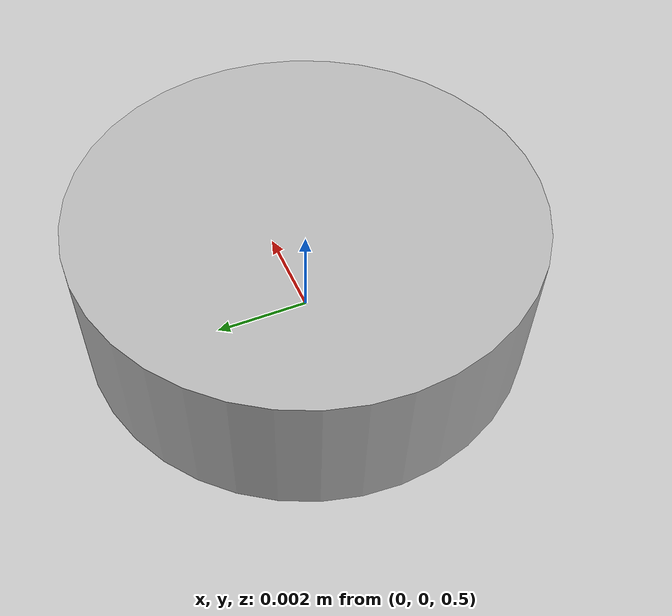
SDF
<?xml version="1.0"?>
<sdf version="1.4">
	<model name="wire_sensor_mount">
	<pose>0 0 0.5 0 0 0</pose>
	<link name="link">
	<gravity>0</gravity>
		<visual name="visual">
			<pose>0 0 0 1.57 0 1.57 </pose>
			<geometry>
				<mesh>
					<uri>model://wire_sensor_mount/meshes/wire_sensor_mount.STL </uri>
				</mesh>
			</geometry>
		</visual>
	</link>
	</model>

</sdf>
